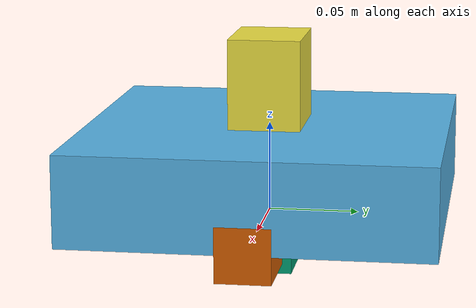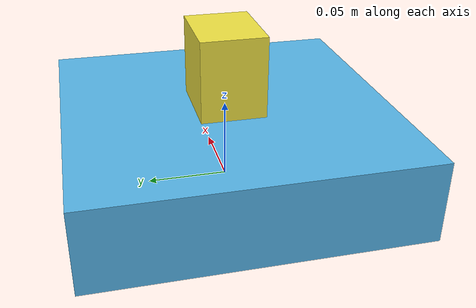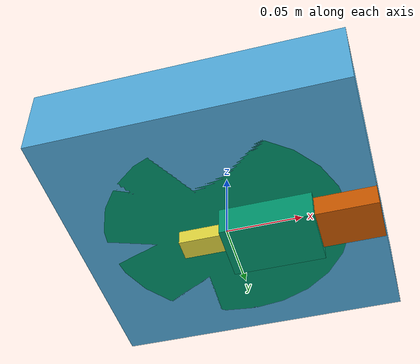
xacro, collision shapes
<?xml version="1.0"?>

<robot name="robot_arm" xmlns:xacro="http://www.ros.org/wiki/xacro">

  <xacro:property name="PI" value="3.141592653589793"/>
  <xacro:property name="mesh_scale" value="0.01 0.01 0.01"/>

  <!-- LINKS -->

  <link name="world"/>

  <!-- Base link / basement -->
  <link name="base_link">

    <visual>
      <origin xyz="-0.5 -0.5 -0.305" rpy="0 0 0"/>
      <geometry>
        <mesh filename="package://robot_arm_description/meshes/basement.STL"
              scale="${mesh_scale}"/>
      </geometry>
    </visual>

    <collision>
      <origin xyz="0 0 0.025" rpy="0 0 0"/>
      <geometry>
        <box size="0.20 0.20 0.05"/>
      </geometry>
    </collision>

    <inertial>
      <origin xyz="0 0 0.025" rpy="0 0 0"/>
      <mass value="1.0"/>
      <inertia
        ixx="0.00354"
        ixy="0.0"
        ixz="0.0"
        iyy="0.00354"
        iyz="0.0"
        izz="0.00667"/>
    </inertial>

  </link>

  <!-- Base plate -->
  <link name="base_plate">

    <visual>
      <origin xyz="-0.39 -0.39 -0.56" rpy="0 0 0"/>
      <geometry>
        <mesh filename="package://robot_arm_description/meshes/base_plate.STL"
              scale="${mesh_scale}"/>
      </geometry>
    </visual>

    <collision>
      <origin xyz="0 0 0.02" rpy="0 0 0"/>
      <geometry>
        <cylinder radius="0.08" length="0.04"/>
      </geometry>
    </collision>

    <inertial>
      <origin xyz="0 0 0.02" rpy="0 0 0"/>
      <mass value="0.8"/>
      <inertia
        ixx="0.00053"
        ixy="0.0"
        ixz="0.0"
        iyy="0.00053"
        iyz="0.0"
        izz="0.00256"/>
    </inertial>

  </link>

  <!-- Forward drive arm -->
  <link name="forward_drive_arm">

    <visual>
      <origin xyz="0.17 0.09 0.28"
              rpy="0 ${-PI/2} ${PI/2}"/>
      <geometry>
        <mesh filename="package://robot_arm_description/meshes/forward_drive_arm.STL"
              scale="${mesh_scale}"/>
      </geometry>
    </visual>

    <collision>
      <origin xyz="0 0 0.05" rpy="0 0 0"/>
      <geometry>
        <box size="0.05 0.04 0.10"/>
      </geometry>
    </collision>

    <inertial>
      <origin xyz="0 0 0.05" rpy="0 0 0"/>
      <mass value="0.45"/>
      <inertia
        ixx="0.000435"
        ixy="0.0"
        ixz="0.0"
        iyy="0.000469"
        iyz="0.0"
        izz="0.000154"/>
    </inertial>

  </link>

  <!-- Vertical drive arm -->
  <link name="vertical_drive_arm">

    <visual>
      <origin xyz="-0.1 -0.39 0.42"
              rpy="-1.5708 ${-2*PI} ${PI/2}"/>
      <geometry>
        <mesh filename="package://robot_arm_description/meshes/vertical_drive_arm.STL"
              scale="${mesh_scale}"/>
      </geometry>
    </visual>

    <collision>
      <origin xyz="0 0 0.05" rpy="0 0 0"/>
      <geometry>
        <box size="0.05 0.04 0.10"/>
      </geometry>
    </collision>

    <inertial>
      <origin xyz="0 0 0.05" rpy="0 0 0"/>
      <mass value="0.45"/>
      <inertia
        ixx="0.000435"
        ixy="0.0"
        ixz="0.0"
        iyy="0.000469"
        iyz="0.0"
        izz="0.000154"/>
    </inertial>

  </link>

  <!-- Horizontal arm -->
  <link name="horizontal_arm">

    <visual>
      <origin xyz="-0.035 -0.4 1.08"
              rpy="${PI/2} 0 ${PI/2}"/>
      <geometry>
        <mesh filename="package://robot_arm_description/meshes/horizontal_arm.STL"
              scale="${mesh_scale}"/>
      </geometry>
    </visual>

    <collision>
      <origin xyz="0.05 0 0" rpy="0 0 0"/>
      <geometry>
        <box size="0.10 0.03 0.03"/>
      </geometry>
    </collision>

    <inertial>
      <origin xyz="0.05 0 0" rpy="0 0 0"/>
      <mass value="0.35"/>
      <inertia
        ixx="0.0000525"
        ixy="0.0"
        ixz="0.0"
        iyy="0.000318"
        iyz="0.0"
        izz="0.000318"/>
    </inertial>

  </link>

  <!-- Triangular link -->
  <link name="triangular_link">

    <visual>
      <origin xyz="0.13 -0.39 1.4"
              rpy="${PI} ${-2*PI} ${PI}"/>
      <geometry>
        <mesh filename="package://robot_arm_description/meshes/triangular_link.STL"
              scale="${mesh_scale}"/>
      </geometry>
    </visual>

    <collision>
      <origin xyz="0.05 0 0" rpy="0 0 0"/>
      <geometry>
        <box size="0.10 0.03 0.03"/>
      </geometry>
    </collision>

    <inertial>
      <origin xyz="0.05 0 0" rpy="0 0 0"/>
      <mass value="0.35"/>
      <inertia
        ixx="0.0000525"
        ixy="0.0"
        ixz="0.0"
        iyy="0.000318"
        iyz="0.0"
        izz="0.000318"/>
    </inertial>

  </link>
 <!-- Link -->
  <link name="link">

    <visual>
      <origin xyz="0.09 0.06 1.25"
              rpy="${PI/2} 0 ${PI/2}"/>
      <geometry>
        <mesh filename="package://robot_arm_description/meshes/link.STL"
              scale="${mesh_scale}"/>
      </geometry>
    </visual>

    <collision>
      <origin xyz="0.05 0 0" rpy="0 0 0"/>
      <geometry>
        <box size="0.10 0.03 0.03"/>
      </geometry>
    </collision>

    <inertial>
      <origin xyz="0.05 0 0" rpy="0 0 0"/>
      <mass value="0.35"/>
      <inertia
        ixx="0.0000525"
        ixy="0.0"
        ixz="0.0"
        iyy="0.000318"
        iyz="0.0"
        izz="0.000318"/>
    </inertial>

  </link>

 <!-- Link_1 -->
  <link name="link_1">

    <visual>
      <origin xyz="-0.05 -0.4 0.3"
              rpy="${PI} ${-PI/2} ${-PI}"/>
      <geometry>
        <mesh filename="package://robot_arm_description/meshes/link_1.STL"
              scale="${mesh_scale}"/>
      </geometry>
    </visual>

    <collision>
      <origin xyz="0.05 0 0" rpy="0 0 0"/>
      <geometry>
        <box size="0.10 0.03 0.03"/>
      </geometry>
    </collision>

    <inertial>
      <origin xyz="0.05 0 0" rpy="0 0 0"/>
      <mass value="0.35"/>
      <inertia
        ixx="0.0000525"
        ixy="0.0"
        ixz="0.0"
        iyy="0.000318"
        iyz="0.0"
        izz="0.000318"/>
    </inertial>

  </link>

 <!-- Link_2 -->
  <link name="link_2">

    <visual>
      <origin xyz="0.12 -0.4 1.4"
              rpy="${PI} ${PI/2} ${-PI}"/>
      <geometry>
        <mesh filename="package://robot_arm_description/meshes/link_2.STL"
              scale="${mesh_scale}"/>
      </geometry>
    </visual>

    <collision>
      <origin xyz="0.05 0 0" rpy="0 0 0"/>
      <geometry>
        <box size="0.10 0.03 0.03"/>
      </geometry>
    </collision>

    <inertial>
      <origin xyz="0.05 0 0" rpy="0 0 0"/>
      <mass value="0.35"/>
      <inertia
        ixx="0.0000525"
        ixy="0.0"
        ixz="0.0"
        iyy="0.000318"
        iyz="0.0"
        izz="0.000318"/>
    </inertial>

  </link>

  <!-- Claw support -->
  <link name="claw_support">

    <visual>
      <origin xyz="0.13 0.765 0.995"
              rpy="0 0 ${PI/2}"/>
      <geometry>
        <mesh filename="package://robot_arm_description/meshes/claw_support.STL"
              scale="${mesh_scale}"/>
      </geometry>
    </visual>

    <collision>
      <origin xyz="0.03 0 0" rpy="0 0 0"/>
      <geometry>
        <box size="0.06 0.04 0.04"/>
      </geometry>
    </collision>

    <inertial>
      <origin xyz="0.03 0 0" rpy="0 0 0"/>
      <mass value="0.25"/>
      <inertia
        ixx="0.0000667"
        ixy="0.0"
        ixz="0.0"
        iyy="0.000108"
        iyz="0.0"
        izz="0.000108"/>
    </inertial>

  </link>

  <!-- Right finger -->
  <link name="right_finger">

    <visual>
      <origin xyz="0 1.49 1.06"
              rpy="0 0 ${-PI/2}"/>
      <geometry>
        <mesh filename="package://robot_arm_description/meshes/right_finger.STL"
              scale="${mesh_scale}"/>
      </geometry>
    </visual>

    <collision>
      <origin xyz="0.0 0 0" rpy="0 0 0"/>
      <geometry>
        <box size="0.06 0.015 0.02"/>
      </geometry>
    </collision>

    <inertial>
      <origin xyz="0.03 0 0" rpy="0 0 0"/>
      <mass value="0.05"/>
      <inertia
        ixx="0.0000026"
        ixy="0.0"
        ixz="0.0"
        iyy="0.0000167"
        iyz="0.0"
        izz="0.0000159"/>
    </inertial>

  </link>

  <!-- Left finger -->
  <link name="left_finger">

    <visual>
      <origin xyz="-0.11 1.49 1.06"
              rpy="0 0 ${-PI/2}"/>
      <geometry>
        <mesh filename="package://robot_arm_description/meshes/left_finger.STL"
              scale="${mesh_scale}"/>
      </geometry>
    </visual>

    <collision>
      <origin xyz="0.03 0 0" rpy="0 0 0"/>
      <geometry>
        <box size="0.06 0.015 0.02"/>
      </geometry>
    </collision>

    <inertial>
      <origin xyz="0.03 0 0" rpy="0 0 0"/>
      <mass value="0.05"/>
      <inertia
        ixx="0.0000026"
        ixy="0.0"
        ixz="0.0"
        iyy="0.0000167"
        iyz="0.0"
        izz="0.0000159"/>
    </inertial>

  </link>

  <!-- JOINTS - FIXED FOR VISUAL VALIDATION -->

  <!-- world → base_link -->
  <joint name="world_to_base_link" type="fixed">
    <parent link="world"/>
    <child link="base_link"/>
    <origin xyz="0 0 0" rpy="0 0 0"/>
  </joint>

  <!-- base_link → base_plate -->
  <joint name="base_link_to_base_plate" type="fixed">
    <parent link="base_link"/>
    <child link="base_plate"/>
    <origin xyz="0 0 0" rpy="0 0 0"/>
  </joint>

  <!-- base_plate → forward_drive_arm -->
  <joint name="base_plate_to_forward_drive_arm" type="fixed">
    <parent link="base_plate"/>
    <child link="forward_drive_arm"/>
    <origin xyz="0 0 0" rpy="0 0 0"/>
  </joint>

  <!-- forward_drive_arm → horizontal_arm -->
  <joint name="forward_drive_arm_to_horizontal_arm" type="fixed">
    <parent link="forward_drive_arm"/>
    <child link="horizontal_arm"/>
    <origin xyz="0 0 0" rpy="0 0 0"/>
  </joint>

<!-- base_plate → vertical_drive_arm -->
<joint name="base_plate_to_vertical_drive_arm" type="fixed">
  <parent link="base_plate"/>
  <child link="vertical_drive_arm"/>
  <origin xyz="0 0 0" rpy="0 0 0"/>
</joint>

<!-- forward_drive_arm → triangular_link -->
<joint name="forward_drive_arm_to_triangular_link" type="fixed">
  <parent link="forward_drive_arm"/>
  <child link="triangular_link"/>
  <origin xyz="0 0 0" rpy="0 0 0"/>
</joint>

<!-- link → vertical drive arm to triangular_link -->
<joint name="link_vertical_drive_arm_to_triangular_link" type="fixed">
  <parent link="vertical_drive_arm"/>
  <child link="link"/>
  <origin xyz="0 0 0" rpy="0 0 0"/>
</joint>

<!-- link_1 → vertical drive arm to triangular_link -->
<joint name="link_1_vertical_drive_arm_to_triangular_link" type="fixed">
  <parent link="vertical_drive_arm"/>
  <child link="link_1"/>
  <origin xyz="0 0 0" rpy="0 0 0"/>
</joint>

<!-- link_2 → vertical drive arm to triangular_link -->
<joint name="link_2_base_plate_to_triangular_link" type="fixed">
  <parent link="triangular_link"/>
  <child link="link_2"/>
  <origin xyz="0 0 0" rpy="0 0 0"/>
</joint>

  <!-- horizontal_arm → claw_support -->
  <joint name="horizontal_arm_to_claw_support" type="fixed">
    <parent link="horizontal_arm"/>
    <child link="claw_support"/>
    <origin xyz="0 0 0" rpy="0 0 0"/>
  </joint>

  <!-- claw_support → right_finger -->
  <joint name="claw_support_to_right_finger" type="fixed">
    <parent link="claw_support"/>
    <child link="right_finger"/>
    <origin xyz="0 0 0" rpy="0 0 0"/>
  </joint>

  <!-- claw_support → left_finger -->
  <joint name="claw_support_to_left_finger" type="fixed">
    <parent link="claw_support"/>
    <child link="left_finger"/>
    <origin xyz="0 0 0" rpy="0 0 0"/>
  </joint>

</robot>
